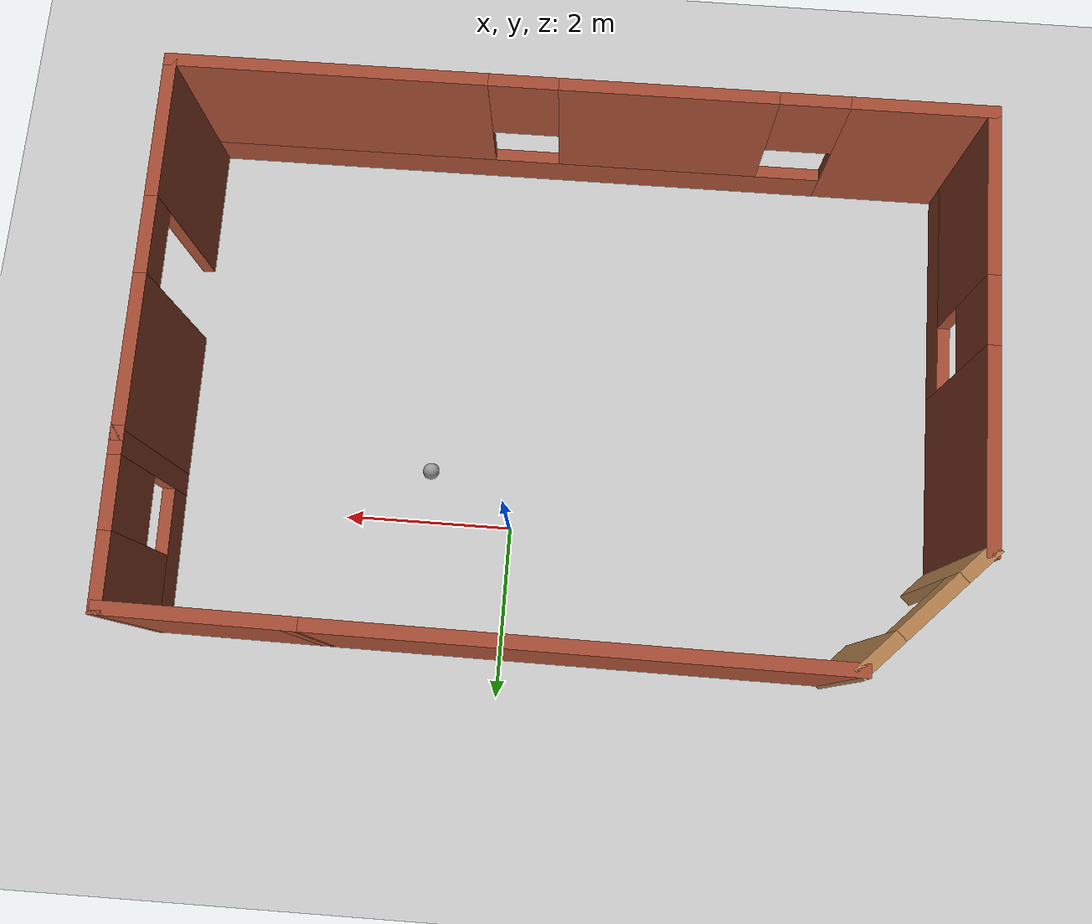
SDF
<sdf version="1.6">
 <world name="default">
  <light name="sun" type="directional">
   <pose>0 0 10 0 -0 0</pose>
   <diffuse>0.8 0.8 0.8 1</diffuse>
   <specular>0.2 0.2 0.2 1</specular>
   <attenuation>
    <range>1000</range>
    <constant>0.9</constant>
    <linear>0.01</linear>
    <quadratic>0.001</quadratic>
   </attenuation>
   <direction>-0.5 0.1 -0.9</direction>
  </light>
  <model name="ground_plane">
   <static>1</static>
   <link name="link">
    <collision name="collision">
     <geometry><plane><normal>0 0 1</normal><size>100 100</size></plane></geometry>
     <surface><friction><ode><mu>100</mu><mu2>50</mu2></ode></friction></surface>
    </collision>
    <visual name="visual">
     <cast_shadows>0</cast_shadows>
     <geometry><plane><normal>0 0 1</normal><size>100 100</size></plane></geometry>
     <material>
      <script><uri>file://media/materials/scripts/gazebo.material</uri><name>Gazebo/Grey</name></script>
     </material>
    </visual>
   </link>
  </model>
  <gravity>0 0 -9.8</gravity>
  <magnetic_field>6e-06 2.3e-05 -4.2e-05</magnetic_field>
  <atmosphere type="adiabatic"/>
  <physics name="default_physics" default="0" type="ode">
   <max_step_size>0.001</max_step_size>
   <real_time_factor>1</real_time_factor>
   <real_time_update_rate>1000</real_time_update_rate>
  </physics>
  <scene><ambient>0.4 0.4 0.4 1</ambient><background>0.7 0.7 0.7 1</background><shadows>1</shadows></scene>
  <spherical_coordinates>
   <surface_model>EARTH_WGS84</surface_model>
   <latitude_deg>0</latitude_deg>
   <longitude_deg>0</longitude_deg>
   <elevation>0</elevation>
   <heading_deg>0</heading_deg>
  </spherical_coordinates>
  <model name="garrage1020">
   <pose>-0.49964 -1.58723 0 0 -0 0</pose>
   <link name="Wall_0">
    <pose>-4.64068 -0.669347 0 0 0 -1.57774</pose>
    <visual name="Wall_0_Visual_0">
     <pose>-1.40243 0 1.25 0 -0 0</pose>
     <geometry><box><size>2.29211 0.15 2.5</size></box></geometry>
     <material>
      <script><uri>file://media/materials/scripts/gazebo.material</uri><name>Gazebo/Bricks</name></script>
      <ambient>1 1 1 1</ambient>
     </material>
     <meta><layer>0</layer></meta>
    </visual>
    <collision name="Wall_0_Collision_0">
     <geometry><box><size>2.29211 0.15 2.5</size></box></geometry>
     <pose>-1.40243 0 1.25 0 -0 0</pose>
    </collision>
    <visual name="Wall_0_Visual_1">
     <pose>1.14605 0 0.25 0 -0 0</pose>
     <geometry><box><size>2.80486 0.15 0.5</size></box></geometry>
     <material>
      <script><uri>file://media/materials/scripts/gazebo.material</uri><name>Gazebo/Bricks</name></script>
      <ambient>1 1 1 1</ambient>
     </material>
     <meta><layer>0</layer></meta>
    </visual>
    <collision name="Wall_0_Collision_1">
     <geometry><box><size>2.80486 0.15 0.5</size></box></geometry>
     <pose>1.14605 0 0.25 0 -0 0</pose>
    </collision>
    <visual name="Wall_0_Visual_2">
     <pose>1.54605 0 1.5 0 -0 0</pose>
     <geometry><box><size>2.00486 0.15 2</size></box></geometry>
     <material>
      <script><uri>file://media/materials/scripts/gazebo.material</uri><name>Gazebo/Bricks</name></script>
      <ambient>1 1 1 1</ambient>
     </material>
     <meta><layer>0</layer></meta>
    </visual>
    <collision name="Wall_0_Collision_2">
     <geometry><box><size>2.00486 0.15 2</size></box></geometry>
     <pose>1.54605 0 1.5 0 -0 0</pose>
    </collision>
    <visual name="Wall_0_Visual_3">
     <pose>0.143622 0 1.9 0 -0 0</pose>
     <geometry><box><size>0.8 0.15 1.2</size></box></geometry>
     <material>
      <script><uri>file://media/materials/scripts/gazebo.material</uri><name>Gazebo/Bricks</name></script>
      <ambient>1 1 1 1</ambient>
     </material>
     <meta><layer>0</layer></meta>
    </visual>
    <collision name="Wall_0_Collision_3">
     <geometry><box><size>0.8 0.15 1.2</size></box></geometry>
     <pose>0.143622 0 1.9 0 -0 0</pose>
    </collision>
   </link>
   <link name="Wall_1">
    <pose>-0.000341 -3.12528 0 0 -0 0.003755</pose>
    <visual name="Wall_1_Visual_0">
     <pose>-3.8919 0 1.25 0 -0 0</pose>
     <geometry><box><size>1.68137 0.15 2.5</size></box></geometry>
     <material>
      <script><uri>file://media/materials/scripts/gazebo.material</uri><name>Gazebo/Bricks</name></script>
      <ambient>1 1 1 1</ambient>
     </material>
     <meta><layer>0</layer></meta>
    </visual>
    <collision name="Wall_1_Collision_0">
     <geometry><box><size>1.68137 0.15 2.5</size></box></geometry>
     <pose>-3.8919 0 1.25 0 -0 0</pose>
    </collision>
    <visual name="Wall_1_Visual_1">
     <pose>0.840684 0 0.25 0 -0 0</pose>
     <geometry><box><size>7.7838 0.15 0.5</size></box></geometry>
     <material>
      <script><uri>file://media/materials/scripts/gazebo.material</uri><name>Gazebo/Bricks</name></script>
      <ambient>1 1 1 1</ambient>
     </material>
     <meta><layer>0</layer></meta>
    </visual>
    <collision name="Wall_1_Collision_1">
     <geometry><box><size>7.7838 0.15 0.5</size></box></geometry>
     <pose>0.840684 0 0.25 0 -0 0</pose>
    </collision>
    <visual name="Wall_1_Visual_2">
     <pose>-1.00316 0 1.5 0 -0 0</pose>
     <geometry><box><size>2.49611 0.15 2</size></box></geometry>
     <material>
      <script><uri>file://media/materials/scripts/gazebo.material</uri><name>Gazebo/Bricks</name></script>
      <ambient>1 1 1 1</ambient>
     </material>
     <meta><layer>0</layer></meta>
    </visual>
    <collision name="Wall_1_Collision_2">
     <geometry><box><size>2.49611 0.15 2</size></box></geometry>
     <pose>-1.00316 0 1.5 0 -0 0</pose>
    </collision>
    <visual name="Wall_1_Visual_3">
     <pose>2.88874 0 1.5 0 -0 0</pose>
     <geometry><box><size>3.68769 0.15 2</size></box></geometry>
     <material>
      <script><uri>file://media/materials/scripts/gazebo.material</uri><name>Gazebo/Bricks</name></script>
      <ambient>1 1 1 1</ambient>
     </material>
     <meta><layer>0</layer></meta>
    </visual>
    <collision name="Wall_1_Collision_3">
     <geometry><box><size>3.68769 0.15 2</size></box></geometry>
     <pose>2.88874 0 1.5 0 -0 0</pose>
    </collision>
    <visual name="Wall_1_Visual_4">
     <pose>-2.65122 0 1.9 0 -0 0</pose>
     <geometry><box><size>0.8 0.15 1.2</size></box></geometry>
     <material>
      <script><uri>file://media/materials/scripts/gazebo.material</uri><name>Gazebo/Bricks</name></script>
      <ambient>1 1 1 1</ambient>
     </material>
     <meta><layer>0</layer></meta>
    </visual>
    <collision name="Wall_1_Collision_4">
     <geometry><box><size>0.8 0.15 1.2</size></box></geometry>
     <pose>-2.65122 0 1.9 0 -0 0</pose>
    </collision>
    <visual name="Wall_1_Visual_5">
     <pose>0.644891 0 1.9 0 -0 0</pose>
     <geometry><box><size>0.8 0.15 1.2</size></box></geometry>
     <material>
      <script><uri>file://media/materials/scripts/gazebo.material</uri><name>Gazebo/Bricks</name></script>
      <ambient>1 1 1 1</ambient>
     </material>
     <meta><layer>0</layer></meta>
    </visual>
    <collision name="Wall_1_Collision_5">
     <geometry><box><size>0.8 0.15 1.2</size></box></geometry>
     <pose>0.644891 0 1.9 0 -0 0</pose>
    </collision>
   </link>
   <link name="Wall_2">
    <pose>4.62219 -0.924049 0 0 -0 1.58694</pose>
    <visual name="Wall_2_Visual_0">
     <pose>-1.38312 0 1.25 0 -0 0</pose>
     <geometry><box><size>1.71683 0.15 2.5</size></box></geometry>
     <material>
      <script><uri>file://media/materials/scripts/gazebo.material</uri><name>Gazebo/Bricks</name></script>
      <ambient>1 1 1 1</ambient>
     </material>
     <meta><layer>0</layer></meta>
    </visual>
    <collision name="Wall_2_Collision_0">
     <geometry><box><size>1.71683 0.15 2.5</size></box></geometry>
     <pose>-1.38312 0 1.25 0 -0 0</pose>
    </collision>
    <visual name="Wall_2_Visual_1">
     <pose>1.30842 0 1.25 0 -0 0</pose>
     <geometry><box><size>1.86625 0.15 2.5</size></box></geometry>
     <material>
      <script><uri>file://media/materials/scripts/gazebo.material</uri><name>Gazebo/Bricks</name></script>
      <ambient>1 1 1 1</ambient>
     </material>
     <meta><layer>0</layer></meta>
    </visual>
    <collision name="Wall_2_Collision_1">
     <geometry><box><size>1.86625 0.15 2.5</size></box></geometry>
     <pose>1.30842 0 1.25 0 -0 0</pose>
    </collision>
    <visual name="Wall_2_Visual_2">
     <pose>-0.074708 0 2.25 0 -0 0</pose>
     <geometry><box><size>0.9 0.15 0.5</size></box></geometry>
     <material>
      <script><uri>file://media/materials/scripts/gazebo.material</uri><name>Gazebo/Bricks</name></script>
      <ambient>1 1 1 1</ambient>
     </material>
     <meta><layer>0</layer></meta>
    </visual>
    <collision name="Wall_2_Collision_2">
     <geometry><box><size>0.9 0.15 0.5</size></box></geometry>
     <pose>-0.074708 0 2.25 0 -0 0</pose>
    </collision>
   </link>
   <link name="Wall_3">
    <pose>4.56044 2.14223 0 0 -0 1.59996</pose>
    <visual name="Wall_3_Visual_0">
     <pose>-0.833662 0 1.25 0 -0 0</pose>
     <geometry><box><size>0.318476 0.15 2.5</size></box></geometry>
     <material>
      <script><uri>file://media/materials/scripts/gazebo.material</uri><name>Gazebo/Bricks</name></script>
      <ambient>1 1 1 1</ambient>
     </material>
     <meta><layer>0</layer></meta>
    </visual>
    <collision name="Wall_3_Collision_0">
     <geometry><box><size>0.318476 0.15 2.5</size></box></geometry>
     <pose>-0.833662 0 1.25 0 -0 0</pose>
    </collision>
    <visual name="Wall_3_Visual_1">
     <pose>0.159238 0 0.25 0 -0 0</pose>
     <geometry><box><size>1.66732 0.15 0.5</size></box></geometry>
     <material>
      <script><uri>file://media/materials/scripts/gazebo.material</uri><name>Gazebo/Bricks</name></script>
      <ambient>1 1 1 1</ambient>
     </material>
     <meta><layer>0</layer></meta>
    </visual>
    <collision name="Wall_3_Collision_1">
     <geometry><box><size>1.66732 0.15 0.5</size></box></geometry>
     <pose>0.159238 0 0.25 0 -0 0</pose>
    </collision>
    <visual name="Wall_3_Visual_2">
     <pose>0.559238 0 1.5 0 -0 0</pose>
     <geometry><box><size>0.867324 0.15 2</size></box></geometry>
     <material>
      <script><uri>file://media/materials/scripts/gazebo.material</uri><name>Gazebo/Bricks</name></script>
      <ambient>1 1 1 1</ambient>
     </material>
     <meta><layer>0</layer></meta>
    </visual>
    <collision name="Wall_3_Collision_2">
     <geometry><box><size>0.867324 0.15 2</size></box></geometry>
     <pose>0.559238 0 1.5 0 -0 0</pose>
    </collision>
    <visual name="Wall_3_Visual_3">
     <pose>-0.274424 0 1.9 0 -0 0</pose>
     <geometry><box><size>0.8 0.15 1.2</size></box></geometry>
     <material>
      <script><uri>file://media/materials/scripts/gazebo.material</uri><name>Gazebo/Bricks</name></script>
      <ambient>1 1 1 1</ambient>
     </material>
     <meta><layer>0</layer></meta>
    </visual>
    <collision name="Wall_3_Collision_3">
     <geometry><box><size>0.8 0.15 1.2</size></box></geometry>
     <pose>-0.274424 0 1.9 0 -0 0</pose>
    </collision>
   </link>
   <link name="Wall_4">
    <collision name="Wall_4_Collision">
     <geometry><box><size>2.14514 0.15 2.5</size></box></geometry>
     <pose>0 0 1.25 0 -0 0</pose>
    </collision>
    <visual name="Wall_4_Visual">
     <pose>0 0 1.25 0 -0 0</pose>
     <geometry><box><size>2.14514 0.15 2.5</size></box></geometry>
     <material>
      <script><uri>file://media/materials/scripts/gazebo.material</uri><name>Gazebo/Bricks</name></script>
      <ambient>1 1 1 1</ambient>
     </material>
     <meta><layer>0</layer></meta>
    </visual>
    <pose>3.51866 3.06848 0 0 -0 3.13283</pose>
   </link>
   <link name="Wall_5">
    <collision name="Wall_5_Collision">
     <geometry><box><size>6.00408 0.15 2.5</size></box></geometry>
     <pose>0 0 1.25 0 -0 0</pose>
    </collision>
    <visual name="Wall_5_Visual">
     <pose>0 0 1.25 0 -0 0</pose>
     <geometry><box><size>6.00408 0.15 2.5</size></box></geometry>
     <material>
      <script><uri>file://media/materials/scripts/gazebo.material</uri><name>Gazebo/Bricks</name></script>
      <ambient>1 1 1 1</ambient>
     </material>
     <meta><layer>0</layer></meta>
    </visual>
    <pose>-0.388371 3.09473 0 0 -0 3.13561</pose>
   </link>
   <link name="Wall_6">
    <pose>-3.96943 2.45815 0 0 0 -2.35619</pose>
    <visual name="Wall_6_Visual_0">
     <pose>-0.697982 0 1.25 0 -0 0</pose>
     <geometry><box><size>0.604036 0.15 2.5</size></box></geometry>
     <material>
      <script><uri>file://media/materials/scripts/gazebo.material</uri><name>Gazebo/Wood</name></script>
      <ambient>1 1 1 1</ambient>
     </material>
     <meta><layer>0</layer></meta>
    </visual>
    <collision name="Wall_6_Collision_0">
     <geometry><box><size>0.604036 0.15 2.5</size></box></geometry>
     <pose>-0.697982 0 1.25 0 -0 0</pose>
    </collision>
    <visual name="Wall_6_Visual_1">
     <pose>0.752018 0 1.25 0 -0 0</pose>
     <geometry><box><size>0.495964 0.15 2.5</size></box></geometry>
     <material>
      <script><uri>file://media/materials/scripts/gazebo.material</uri><name>Gazebo/Wood</name></script>
      <ambient>1 1 1 1</ambient>
     </material>
     <meta><layer>0</layer></meta>
    </visual>
    <collision name="Wall_6_Collision_1">
     <geometry><box><size>0.495964 0.15 2.5</size></box></geometry>
     <pose>0.752018 0 1.25 0 -0 0</pose>
    </collision>
    <visual name="Wall_6_Visual_2">
     <pose>0.054036 0 2.25 0 -0 0</pose>
     <geometry><box><size>0.9 0.15 0.5</size></box></geometry>
     <material>
      <script><uri>file://media/materials/scripts/gazebo.material</uri><name>Gazebo/Wood</name></script>
      <ambient>1 1 1 1</ambient>
     </material>
     <meta><layer>0</layer></meta>
    </visual>
    <collision name="Wall_6_Collision_2">
     <geometry><box><size>0.9 0.15 0.5</size></box></geometry>
     <pose>0.054036 0 2.25 0 -0 0</pose>
    </collision>
   </link>
   <static>1</static>
  </model>
  <model name="my_ball">
   <link name="link_0">
    <inertial>
     <mass>1</mass>
     <inertia><ixx>0.1</ixx><ixy>0</ixy><ixz>0</ixz><iyy>0.1</iyy><iyz>0</iyz><izz>0.1</izz></inertia>
    </inertial>
    <visual name="visual">
     <geometry><sphere><radius>0.1</radius></sphere></geometry>
     <material>
      <lighting>1</lighting>
      <script><uri>file://media/materials/scripts/gazebo.material</uri><name>Gazebo/Grey</name></script>
      <ambient>1 1 1 1</ambient>
      <diffuse>1 1 1 1</diffuse>
      <specular>1 1 1 1</specular>
      <emissive>1 1 1 1</emissive>
      <shader type="vertex"><normal_map>__default__</normal_map></shader>
     </material>
    </visual>
    <collision name="collision">
     <geometry><sphere><radius>0.1</radius></sphere></geometry>
     <surface>
      <friction>
       <ode><mu>1</mu><mu2>1</mu2><fdir1>0 0 0</fdir1><slip1>0</slip1><slip2>0</slip2></ode>
       <torsional>
        <coefficient>1</coefficient>
        <patch_radius>0</patch_radius>
        <surface_radius>0</surface_radius>
        <use_patch_radius>1</use_patch_radius>
        <ode><slip>0</slip></ode>
       </torsional>
      </friction>
      <bounce><restitution_coefficient>0</restitution_coefficient><threshold>1e+06</threshold></bounce>
      <contact>
       <collide_without_contact>0</collide_without_contact>
       <collide_without_contact_bitmask>1</collide_without_contact_bitmask>
       <collide_bitmask>1</collide_bitmask>
       <ode>
        <soft_cfm>0</soft_cfm>
        <soft_erp>0.2</soft_erp>
        <kp>1e+13</kp>
        <kd>1</kd>
        <max_vel>0.01</max_vel>
        <min_depth>0</min_depth>
       </ode>
       <bullet>
        <split_impulse>1</split_impulse>
        <split_impulse_penetration_threshold>-0.01</split_impulse_penetration_threshold>
        <soft_cfm>0</soft_cfm>
        <soft_erp>0.2</soft_erp>
        <kp>1e+13</kp>
        <kd>1</kd>
       </bullet>
      </contact>
     </surface>
    </collision>
   </link>
   <static>0</static>
   <pose>1.01969 -0.632578 0.1 0 -0 0</pose>
  </model>
 </world>
</sdf>
